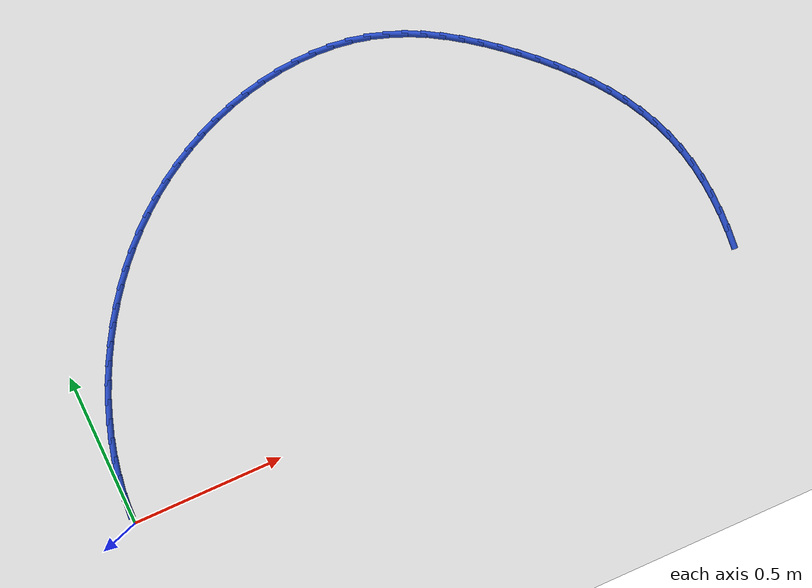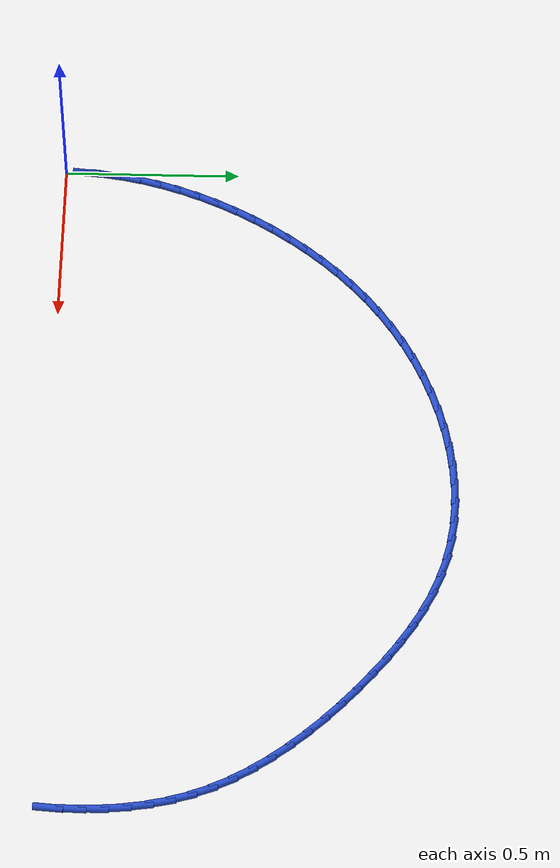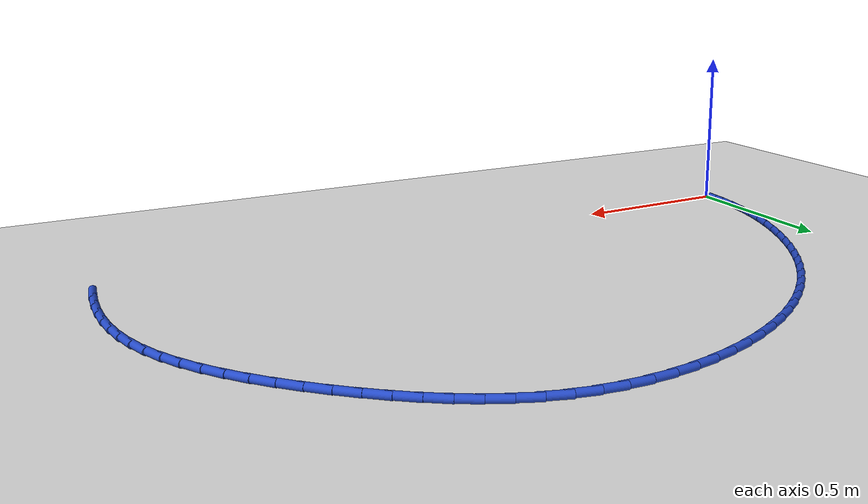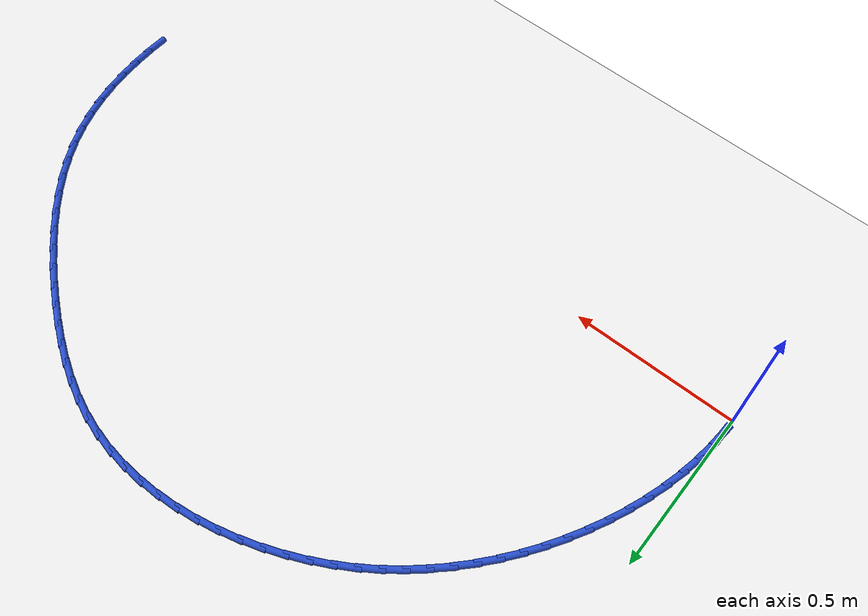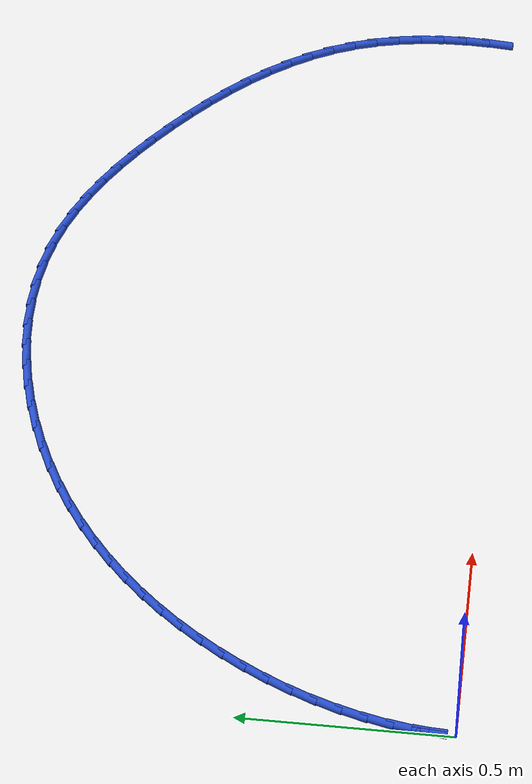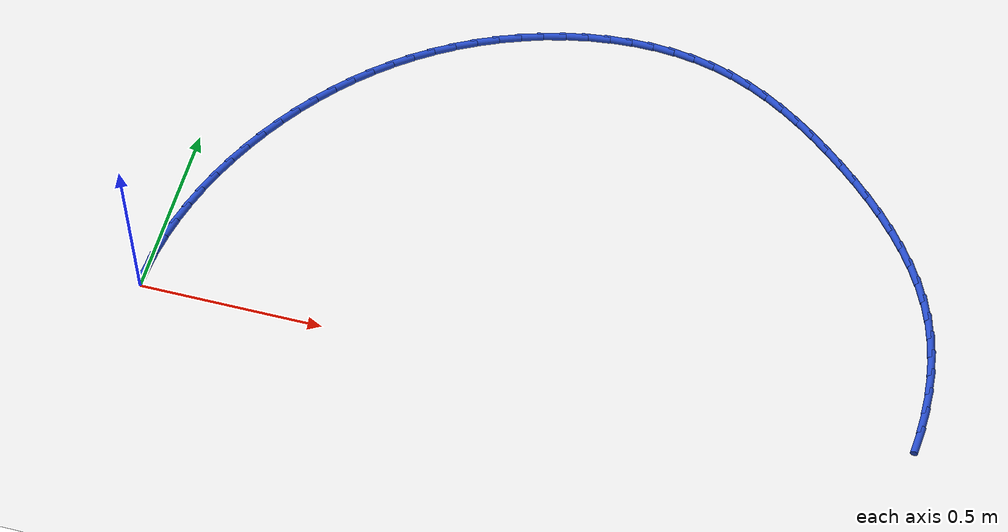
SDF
<sdf version="1.6">
 <world name="default">
  <model name="ground_plane">
   <static>1</static>
   <link name="link">
    <collision name="collision">
     <geometry><plane><normal>0 0 1</normal><size>100 100</size></plane></geometry>
     <surface><friction><ode><mu>100</mu><mu2>50</mu2></ode></friction></surface>
    </collision>
    <visual name="visual">
     <cast_shadows>0</cast_shadows>
     <geometry><plane><normal>0 0 1</normal><size>100 100</size></plane></geometry>
     <material>
      <script><uri>file://media/materials/scripts/gazebo.material</uri><name>Gazebo/WhiteGlow</name></script>
     </material>
    </visual>
   </link>
  </model>
  <model name="line">
   <link name="link_1">
    <pose>0.002670743782525973 0.05992076330531254 0.01 0 1.57 1.4629148495070567</pose>
    <collision name="collision">
     <geometry><cylinder><radius>0.01</radius><length>0.08</length></cylinder></geometry>
    </collision>
    <visual name="visual">
     <material>
      <script><name>Gazebo/Blue</name><uri>file://media/materials/scripts/gazebo.material</uri></script>
     </material>
     <geometry><cylinder><radius>0.01</radius><length>0.08</length></cylinder></geometry>
    </visual>
   </link>
   <link name="link_2">
    <pose>0.009133685577692723 0.1195959706348364 0.01 0 1.57 1.4023652362274563</pose>
    <collision name="collision">
     <geometry><cylinder><radius>0.01</radius><length>0.08</length></cylinder></geometry>
    </collision>
    <visual name="visual">
     <material>
      <script><name>Gazebo/Blue</name><uri>file://media/materials/scripts/gazebo.material</uri></script>
     </material>
     <geometry><cylinder><radius>0.01</radius><length>0.08</length></cylinder></geometry>
    </visual>
   </link>
   <link name="link_3">
    <pose>0.01921371365413952 0.17887556720026782 0.01 0 1.57 1.3445145228680742</pose>
    <collision name="collision">
     <geometry><cylinder><radius>0.01</radius><length>0.08</length></cylinder></geometry>
    </collision>
    <visual name="visual">
     <material>
      <script><name>Gazebo/Blue</name><uri>file://media/materials/scripts/gazebo.material</uri></script>
     </material>
     <geometry><cylinder><radius>0.01</radius><length>0.08</length></cylinder></geometry>
    </visual>
   </link>
   <link name="link_4">
    <pose>0.03273571628050566 0.23760949821330327 0.01 0 1.57 1.289209985234166</pose>
    <collision name="collision">
     <geometry><cylinder><radius>0.01</radius><length>0.08</length></cylinder></geometry>
    </collision>
    <visual name="visual">
     <material>
      <script><name>Gazebo/Blue</name><uri>file://media/materials/scripts/gazebo.material</uri></script>
     </material>
     <geometry><cylinder><radius>0.01</radius><length>0.08</length></cylinder></geometry>
    </visual>
   </link>
   <link name="link_5">
    <pose>0.04952458172543038 0.29564770888563896 0.01 0 1.57 1.2362529853922084</pose>
    <collision name="collision">
     <geometry><cylinder><radius>0.01</radius><length>0.08</length></cylinder></geometry>
    </collision>
    <visual name="visual">
     <material>
      <script><name>Gazebo/Blue</name><uri>file://media/materials/scripts/gazebo.material</uri></script>
     </material>
     <geometry><cylinder><radius>0.01</radius><length>0.08</length></cylinder></geometry>
    </visual>
   </link>
   <link name="link_6">
    <pose>0.06940519825755294 0.3528401444289708 0.01 0 1.57 1.1854119181057141</pose>
    <collision name="collision">
     <geometry><cylinder><radius>0.01</radius><length>0.08</length></cylinder></geometry>
    </collision>
    <visual name="visual">
     <material>
      <script><name>Gazebo/Blue</name><uri>file://media/materials/scripts/gazebo.material</uri></script>
     </material>
     <geometry><cylinder><radius>0.01</radius><length>0.08</length></cylinder></geometry>
    </visual>
   </link>
   <link name="link_7">
    <pose>0.09220245414551259 0.40903675005499546 0.01 0 1.57 1.1364322001155174</pose>
    <collision name="collision">
     <geometry><cylinder><radius>0.01</radius><length>0.08</length></cylinder></geometry>
    </collision>
    <visual name="visual">
     <material>
      <script><name>Gazebo/Blue</name><uri>file://media/materials/scripts/gazebo.material</uri></script>
     </material>
     <geometry><cylinder><radius>0.01</radius><length>0.08</length></cylinder></geometry>
    </visual>
   </link>
   <link name="link_8">
    <pose>0.11774123765794867 0.46408747097540926 0.01 0 1.57 1.08904339490373</pose>
    <collision name="collision">
     <geometry><cylinder><radius>0.01</radius><length>0.08</length></cylinder></geometry>
    </collision>
    <visual name="visual">
     <material>
      <script><name>Gazebo/Blue</name><uri>file://media/materials/scripts/gazebo.material</uri></script>
     </material>
     <geometry><cylinder><radius>0.01</radius><length>0.08</length></cylinder></geometry>
    </visual>
   </link>
   <link name="link_9">
    <pose>0.1458464370635003 0.517842252401908 0.01 0 1.57 1.0428984276731994</pose>
    <collision name="collision">
     <geometry><cylinder><radius>0.01</radius><length>0.08</length></cylinder></geometry>
    </collision>
    <visual name="visual">
     <material>
      <script><name>Gazebo/Blue</name><uri>file://media/materials/scripts/gazebo.material</uri></script>
     </material>
     <geometry><cylinder><radius>0.01</radius><length>0.08</length></cylinder></geometry>
    </visual>
   </link>
   <link name="link_10">
    <pose>0.1763479412515382 0.5701517620996592 0.01 0 1.57 0.9966374861989264</pose>
    <collision name="collision">
     <geometry><cylinder><radius>0.01</radius><length>0.08</length></cylinder></geometry>
    </collision>
    <visual name="visual">
     <material>
      <script><name>Gazebo/Blue</name><uri>file://media/materials/scripts/gazebo.material</uri></script>
     </material>
     <geometry><cylinder><radius>0.01</radius><length>0.08</length></cylinder></geometry>
    </visual>
   </link>
   <link name="link_11">
    <pose>0.20916093827418722 0.6208789929449392 0.01 0 1.57 0.949222952366097</pose>
    <collision name="collision">
     <geometry><cylinder><radius>0.01</radius><length>0.08</length></cylinder></geometry>
    </collision>
    <visual name="visual">
     <material>
      <script><name>Gazebo/Blue</name><uri>file://media/materials/scripts/gazebo.material</uri></script>
     </material>
     <geometry><cylinder><radius>0.01</radius><length>0.08</length></cylinder></geometry>
    </visual>
   </link>
   <link name="link_12">
    <pose>0.24427208668566366 0.6698972647838428 0.01 0 1.57 0.9005714180768248</pose>
    <collision name="collision">
     <geometry><cylinder><radius>0.01</radius><length>0.08</length></cylinder></geometry>
    </collision>
    <visual name="visual">
     <material>
      <script><name>Gazebo/Blue</name><uri>file://media/materials/scripts/gazebo.material</uri></script>
     </material>
     <geometry><cylinder><radius>0.01</radius><length>0.08</length></cylinder></geometry>
    </visual>
   </link>
   <link name="link_13">
    <pose>0.28167025277528546 0.7170802164641935 0.01 0 1.57 0.850647292722275</pose>
    <collision name="collision">
     <geometry><cylinder><radius>0.01</radius><length>0.08</length></cylinder></geometry>
    </collision>
    <visual name="visual">
     <material>
      <script><name>Gazebo/Blue</name><uri>file://media/materials/scripts/gazebo.material</uri></script>
     </material>
     <geometry><cylinder><radius>0.01</radius><length>0.08</length></cylinder></geometry>
    </visual>
   </link>
   <link name="link_14">
    <pose>0.3213443028323702 0.762301486833815 0.01 0 1.57 0.7994374327375275</pose>
    <collision name="collision">
     <geometry><cylinder><radius>0.01</radius><length>0.08</length></cylinder></geometry>
    </collision>
    <visual name="visual">
     <material>
      <script><name>Gazebo/Blue</name><uri>file://media/materials/scripts/gazebo.material</uri></script>
     </material>
     <geometry><cylinder><radius>0.01</radius><length>0.08</length></cylinder></geometry>
    </visual>
   </link>
   <link name="link_15">
    <pose>0.3632831031462361 0.805434714740532 0.01 0 1.57 0.7469545961818209</pose>
    <collision name="collision">
     <geometry><cylinder><radius>0.01</radius><length>0.08</length></cylinder></geometry>
    </collision>
    <visual name="visual">
     <material>
      <script><name>Gazebo/Blue</name><uri>file://media/materials/scripts/gazebo.material</uri></script>
     </material>
     <geometry><cylinder><radius>0.01</radius><length>0.08</length></cylinder></geometry>
    </visual>
   </link>
   <link name="link_16">
    <pose>0.40747552000620085 0.8463535390321676 0.01 0 1.57 0.6932406277167852</pose>
    <collision name="collision">
     <geometry><cylinder><radius>0.01</radius><length>0.08</length></cylinder></geometry>
    </collision>
    <visual name="visual">
     <material>
      <script><name>Gazebo/Blue</name><uri>file://media/materials/scripts/gazebo.material</uri></script>
     </material>
     <geometry><cylinder><radius>0.01</radius><length>0.08</length></cylinder></geometry>
    </visual>
   </link>
   <link name="link_17">
    <pose>0.45391041970158247 0.8849315985565465 0.01 0 1.57 0.6383690635815007</pose>
    <collision name="collision">
     <geometry><cylinder><radius>0.01</radius><length>0.08</length></cylinder></geometry>
    </collision>
    <visual name="visual">
     <material>
      <script><name>Gazebo/Blue</name><uri>file://media/materials/scripts/gazebo.material</uri></script>
     </material>
     <geometry><cylinder><radius>0.01</radius><length>0.08</length></cylinder></geometry>
    </visual>
   </link>
   <link name="link_18">
    <pose>0.5025766685216987 0.9210425321614919 0.01 0 1.57 0.5824468090240494</pose>
    <collision name="collision">
     <geometry><cylinder><radius>0.01</radius><length>0.08</length></cylinder></geometry>
    </collision>
    <visual name="visual">
     <material>
      <script><name>Gazebo/Blue</name><uri>file://media/materials/scripts/gazebo.material</uri></script>
     </material>
     <geometry><cylinder><radius>0.01</radius><length>0.08</length></cylinder></geometry>
    </visual>
   </link>
   <link name="link_19">
    <pose>0.5534631327558676 0.954559978694828 0.01 0 1.57 0.5256238176085087</pose>
    <collision name="collision">
     <geometry><cylinder><radius>0.01</radius><length>0.08</length></cylinder></geometry>
    </collision>
    <visual name="visual">
     <material>
      <script><name>Gazebo/Blue</name><uri>file://media/materials/scripts/gazebo.material</uri></script>
     </material>
     <geometry><cylinder><radius>0.01</radius><length>0.08</length></cylinder></geometry>
    </visual>
   </link>
   <link name="link_20">
    <pose>0.6065571969923734 0.9853573759211827 0.01 0 1.57 0.4686447781451276</pose>
    <collision name="collision">
     <geometry><cylinder><radius>0.01</radius><length>0.08</length></cylinder></geometry>
    </collision>
    <visual name="visual">
     <material>
      <script><name>Gazebo/Blue</name><uri>file://media/materials/scripts/gazebo.material</uri></script>
     </material>
     <geometry><cylinder><radius>0.01</radius><length>0.08</length></cylinder></geometry>
    </visual>
   </link>
   <link name="link_21">
    <pose>0.6617383859235791 1.013293523825977 0.01 0 1.57 0.41219783122946</pose>
    <collision name="collision">
     <geometry><cylinder><radius>0.01</radius><length>0.08</length></cylinder></geometry>
    </collision>
    <visual name="visual">
     <material>
      <script><name>Gazebo/Blue</name><uri>file://media/materials/scripts/gazebo.material</uri></script>
     </material>
     <geometry><cylinder><radius>0.01</radius><length>0.08</length></cylinder></geometry>
    </visual>
   </link>
   <link name="link_22">
    <pose>0.718707120424193 1.0382029160283452 0.01 0 1.57 0.3557655334758526</pose>
    <collision name="collision">
     <geometry><cylinder><radius>0.01</radius><length>0.08</length></cylinder></geometry>
    </collision>
    <visual name="visual">
     <material>
      <script><name>Gazebo/Blue</name><uri>file://media/materials/scripts/gazebo.material</uri></script>
     </material>
     <geometry><cylinder><radius>0.01</radius><length>0.08</length></cylinder></geometry>
    </visual>
   </link>
   <link name="link_23">
    <pose>0.7771469318164739 1.0599177540486053 0.01 0 1.57 0.2987402029087475</pose>
    <collision name="collision">
     <geometry><cylinder><radius>0.01</radius><length>0.08</length></cylinder></geometry>
    </collision>
    <visual name="visual">
     <material>
      <script><name>Gazebo/Blue</name><uri>file://media/materials/scripts/gazebo.material</uri></script>
     </material>
     <geometry><cylinder><radius>0.01</radius><length>0.08</length></cylinder></geometry>
    </visual>
   </link>
   <link name="link_24">
    <pose>0.8367413514226802 1.0782702394070764 0.01 0 1.57 0.24052259899905978</pose>
    <collision name="collision">
     <geometry><cylinder><radius>0.01</radius><length>0.08</length></cylinder></geometry>
    </collision>
    <visual name="visual">
     <material>
      <script><name>Gazebo/Blue</name><uri>file://media/materials/scripts/gazebo.material</uri></script>
     </material>
     <geometry><cylinder><radius>0.01</radius><length>0.08</length></cylinder></geometry>
    </visual>
   </link>
   <link name="link_25">
    <pose>0.8971739105650705 1.0930925736240769 0.01 0 1.57 0.18051719319565718</pose>
    <collision name="collision">
     <geometry><cylinder><radius>0.01</radius><length>0.08</length></cylinder></geometry>
    </collision>
    <visual name="visual">
     <material>
      <script><name>Gazebo/Blue</name><uri>file://media/materials/scripts/gazebo.material</uri></script>
     </material>
     <geometry><cylinder><radius>0.01</radius><length>0.08</length></cylinder></geometry>
    </visual>
   </link>
   <link name="link_26">
    <pose>0.9581281405659038 1.1042169582199257 0.01 0 1.57 0.11813125209369472</pose>
    <collision name="collision">
     <geometry><cylinder><radius>0.01</radius><length>0.08</length></cylinder></geometry>
    </collision>
    <visual name="visual">
     <material>
      <script><name>Gazebo/Blue</name><uri>file://media/materials/scripts/gazebo.material</uri></script>
     </material>
     <geometry><cylinder><radius>0.01</radius><length>0.08</length></cylinder></geometry>
    </visual>
   </link>
   <link name="link_27">
    <pose>1.0192875727474382 1.1114755947149413 0.01 0 1.57 0.052779549257593504</pose>
    <collision name="collision">
     <geometry><cylinder><radius>0.01</radius><length>0.08</length></cylinder></geometry>
    </collision>
    <visual name="visual">
     <material>
      <script><name>Gazebo/Blue</name><uri>file://media/materials/scripts/gazebo.material</uri></script>
     </material>
     <geometry><cylinder><radius>0.01</radius><length>0.08</length></cylinder></geometry>
    </visual>
   </link>
   <link name="link_28">
    <pose>1.0803357384319325 1.1147006846294418 0.01 0 1.57 -0.016102999482137476</pose>
    <collision name="collision">
     <geometry><cylinder><radius>0.01</radius><length>0.08</length></cylinder></geometry>
    </collision>
    <visual name="visual">
     <material>
      <script><name>Gazebo/Blue</name><uri>file://media/materials/scripts/gazebo.material</uri></script>
     </material>
     <geometry><cylinder><radius>0.01</radius><length>0.08</length></cylinder></geometry>
    </visual>
   </link>
   <link name="link_29">
    <pose>1.1409561689416456 1.1137244294837465 0.01 0 1.57 -0.08903810061088754</pose>
    <collision name="collision">
     <geometry><cylinder><radius>0.01</radius><length>0.08</length></cylinder></geometry>
    </collision>
    <visual name="visual">
     <material>
      <script><name>Gazebo/Blue</name><uri>file://media/materials/scripts/gazebo.material</uri></script>
     </material>
     <geometry><cylinder><radius>0.01</radius><length>0.08</length></cylinder></geometry>
    </visual>
   </link>
   <link name="link_30">
    <pose>1.2008323955988363 1.1083790307981736 0.01 0 1.57 -0.1664676463310634</pose>
    <collision name="collision">
     <geometry><cylinder><radius>0.01</radius><length>0.08</length></cylinder></geometry>
    </collision>
    <visual name="visual">
     <material>
      <script><name>Gazebo/Blue</name><uri>file://media/materials/scripts/gazebo.material</uri></script>
     </material>
     <geometry><cylinder><radius>0.01</radius><length>0.08</length></cylinder></geometry>
    </visual>
   </link>
   <link name="link_31">
    <pose>1.2596479497257627 1.098496690093042 0.01 0 1.57 -0.2487025266286435</pose>
    <collision name="collision">
     <geometry><cylinder><radius>0.01</radius><length>0.08</length></cylinder></geometry>
    </collision>
    <visual name="visual">
     <material>
      <script><name>Gazebo/Blue</name><uri>file://media/materials/scripts/gazebo.material</uri></script>
     </material>
     <geometry><cylinder><radius>0.01</radius><length>0.08</length></cylinder></geometry>
    </visual>
   </link>
   <link name="link_32">
    <pose>1.3170863649149658 1.0839096123547478 0.01 0 1.57 -0.333617327439597</pose>
    <collision name="collision">
     <geometry><cylinder><radius>0.01</radius><length>0.08</length></cylinder></geometry>
    </collision>
    <visual name="visual">
     <material>
      <script><name>Gazebo/Blue</name><uri>file://media/materials/scripts/gazebo.material</uri></script>
     </material>
     <geometry><cylinder><radius>0.01</radius><length>0.08</length></cylinder></geometry>
    </visual>
   </link>
   <link name="link_33">
    <pose>1.3729059312867857 1.0645641346204473 0.01 0 1.57 -0.41267585732083867</pose>
    <collision name="collision">
     <geometry><cylinder><radius>0.01</radius><length>0.08</length></cylinder></geometry>
    </collision>
    <visual name="visual">
     <material>
      <script><name>Gazebo/Blue</name><uri>file://media/materials/scripts/gazebo.material</uri></script>
     </material>
     <geometry><cylinder><radius>0.01</radius><length>0.08</length></cylinder></geometry>
    </visual>
   </link>
   <link name="link_34">
    <pose>1.4271364589705104 1.0408211281005038 0.01 0 1.57 -0.4834588051066875</pose>
    <collision name="collision">
     <geometry><cylinder><radius>0.01</radius><length>0.08</length></cylinder></geometry>
    </collision>
    <visual name="visual">
     <material>
      <script><name>Gazebo/Blue</name><uri>file://media/materials/scripts/gazebo.material</uri></script>
     </material>
     <geometry><cylinder><radius>0.01</radius><length>0.08</length></cylinder></geometry>
    </visual>
   </link>
   <link name="link_35">
    <pose>1.479869383585208 1.0131355486790188 0.01 0 1.57 -0.545804833112086</pose>
    <collision name="collision">
     <geometry><cylinder><radius>0.01</radius><length>0.08</length></cylinder></geometry>
    </collision>
    <visual name="visual">
     <material>
      <script><name>Gazebo/Blue</name><uri>file://media/materials/scripts/gazebo.material</uri></script>
     </material>
     <geometry><cylinder><radius>0.01</radius><length>0.08</length></cylinder></geometry>
    </visual>
   </link>
   <link name="link_36">
    <pose>1.5311961407499466 0.9819623522400923 0.01 0 1.57 -0.5998745487296069</pose>
    <collision name="collision">
     <geometry><cylinder><radius>0.01</radius><length>0.08</length></cylinder></geometry>
    </collision>
    <visual name="visual">
     <material>
      <script><name>Gazebo/Blue</name><uri>file://media/materials/scripts/gazebo.material</uri></script>
     </material>
     <geometry><cylinder><radius>0.01</radius><length>0.08</length></cylinder></geometry>
    </visual>
   </link>
   <link name="link_37">
    <pose>1.5812081660837958 0.9477564946678264 0.01 0 1.57 -0.6460151782221087</pose>
    <collision name="collision">
     <geometry><cylinder><radius>0.01</radius><length>0.08</length></cylinder></geometry>
    </collision>
    <visual name="visual">
     <material>
      <script><name>Gazebo/Blue</name><uri>file://media/materials/scripts/gazebo.material</uri></script>
     </material>
     <geometry><cylinder><radius>0.01</radius><length>0.08</length></cylinder></geometry>
    </visual>
   </link>
   <link name="link_38">
    <pose>1.6299968952058226 0.9109729318463211 0.01 0 1.57 -0.6846517417461965</pose>
    <collision name="collision">
     <geometry><cylinder><radius>0.01</radius><length>0.08</length></cylinder></geometry>
    </collision>
    <visual name="visual">
     <material>
      <script><name>Gazebo/Blue</name><uri>file://media/materials/scripts/gazebo.material</uri></script>
     </material>
     <geometry><cylinder><radius>0.01</radius><length>0.08</length></cylinder></geometry>
    </visual>
   </link>
   <link name="link_39">
    <pose>1.6776537637350968 0.8720666196596781 0.01 0 1.57 -0.7177047697587423</pose>
    <collision name="collision">
     <geometry><cylinder><radius>0.01</radius><length>0.08</length></cylinder></geometry>
    </collision>
    <visual name="visual">
     <material>
      <script><name>Gazebo/Blue</name><uri>file://media/materials/scripts/gazebo.material</uri></script>
     </material>
     <geometry><cylinder><radius>0.01</radius><length>0.08</length></cylinder></geometry>
    </visual>
   </link>
   <link name="link_40">
    <pose>1.7241991098372957 0.8314318241223905 0.01 0 1.57 -0.752389569694223</pose>
    <collision name="collision">
     <geometry><cylinder><radius>0.01</radius><length>0.08</length></cylinder></geometry>
    </collision>
    <visual name="visual">
     <material>
      <script><name>Gazebo/Blue</name><uri>file://media/materials/scripts/gazebo.material</uri></script>
     </material>
     <geometry><cylinder><radius>0.01</radius><length>0.08</length></cylinder></geometry>
    </visual>
   </link>
   <link name="link_41">
    <pose>1.769329607477339 0.7891865265551417 0.01 0 1.57 -0.791091773001737</pose>
    <collision name="collision">
     <geometry><cylinder><radius>0.01</radius><length>0.08</length></cylinder></geometry>
    </collision>
    <visual name="visual">
     <material>
      <script><name>Gazebo/Blue</name><uri>file://media/materials/scripts/gazebo.material</uri></script>
     </material>
     <geometry><cylinder><radius>0.01</radius><length>0.08</length></cylinder></geometry>
    </visual>
   </link>
   <link name="link_42">
    <pose>1.812649876787708 0.745370129724515 0.01 0 1.57 -0.8343217278161564</pose>
    <collision name="collision">
     <geometry><cylinder><radius>0.01</radius><length>0.08</length></cylinder></geometry>
    </collision>
    <visual name="visual">
     <material>
      <script><name>Gazebo/Blue</name><uri>file://media/materials/scripts/gazebo.material</uri></script>
     </material>
     <geometry><cylinder><radius>0.01</radius><length>0.08</length></cylinder></geometry>
    </visual>
   </link>
   <link name="link_43">
    <pose>1.8537645314165816 0.700022030861996 0.01 0 1.57 -0.8826458487008829</pose>
    <collision name="collision">
     <geometry><cylinder><radius>0.01</radius><length>0.08</length></cylinder></geometry>
    </collision>
    <visual name="visual">
     <material>
      <script><name>Gazebo/Blue</name><uri>file://media/materials/scripts/gazebo.material</uri></script>
     </material>
     <geometry><cylinder><radius>0.01</radius><length>0.08</length></cylinder></geometry>
    </visual>
   </link>
   <link name="link_44">
    <pose>1.89227818501214 0.6531816271990702 0.01 0 1.57 -0.9366731012097109</pose>
    <collision name="collision">
     <geometry><cylinder><radius>0.01</radius><length>0.08</length></cylinder></geometry>
    </collision>
    <visual name="visual">
     <material>
      <script><name>Gazebo/Blue</name><uri>file://media/materials/scripts/gazebo.material</uri></script>
     </material>
     <geometry><cylinder><radius>0.01</radius><length>0.08</length></cylinder></geometry>
    </visual>
   </link>
   <link name="link_45">
    <pose>1.9277954512225624 0.6048883159672231 0.01 0 1.57 -0.9970269331088978</pose>
    <collision name="collision">
     <geometry><cylinder><radius>0.01</radius><length>0.08</length></cylinder></geometry>
    </collision>
    <visual name="visual">
     <material>
      <script><name>Gazebo/Blue</name><uri>file://media/materials/scripts/gazebo.material</uri></script>
     </material>
     <geometry><cylinder><radius>0.01</radius><length>0.08</length></cylinder></geometry>
    </visual>
   </link>
   <link name="link_46">
    <pose>1.959920943696029 0.55518149439794 0.01 0 1.57 -1.0642958767187027</pose>
    <collision name="collision">
     <geometry><cylinder><radius>0.01</radius><length>0.08</length></cylinder></geometry>
    </collision>
    <visual name="visual">
     <material>
      <script><name>Gazebo/Blue</name><uri>file://media/materials/scripts/gazebo.material</uri></script>
     </material>
     <geometry><cylinder><radius>0.01</radius><length>0.08</length></cylinder></geometry>
    </visual>
   </link>
   <link name="link_47">
    <pose>1.9882592760807194 0.5041005597227065 0.01 0 1.57 -1.1389552844347068</pose>
    <collision name="collision">
     <geometry><cylinder><radius>0.01</radius><length>0.08</length></cylinder></geometry>
    </collision>
    <visual name="visual">
     <material>
      <script><name>Gazebo/Blue</name><uri>file://media/materials/scripts/gazebo.material</uri></script>
     </material>
     <geometry><cylinder><radius>0.01</radius><length>0.08</length></cylinder></geometry>
    </visual>
   </link>
   <link name="link_48">
    <pose>2.0124150900618796 0.4516849105266907 0.01 0 1.57 -1.2190714192493575</pose>
    <collision name="collision">
     <geometry><cylinder><radius>0.01</radius><length>0.08</length></cylinder></geometry>
    </collision>
    <visual name="visual">
     <material>
      <script><name>Gazebo/Blue</name><uri>file://media/materials/scripts/gazebo.material</uri></script>
     </material>
     <geometry><cylinder><radius>0.01</radius><length>0.08</length></cylinder></geometry>
    </visual>
   </link>
   <link name="link_49">
    <pose>2.032123862050148 0.39798026234262585 0.01 0 1.57 -1.2969374727429337</pose>
    <collision name="collision">
     <geometry><cylinder><radius>0.01</radius><length>0.08</length></cylinder></geometry>
    </collision>
    <visual name="visual">
     <material>
      <script><name>Gazebo/Blue</name><uri>file://media/materials/scripts/gazebo.material</uri></script>
     </material>
     <geometry><cylinder><radius>0.01</radius><length>0.08</length></cylinder></geometry>
    </visual>
   </link>
   <link name="link_50">
    <pose>2.04755380207904 0.34305322389958504 0.01 0 1.57 -1.3700944133550388</pose>
    <collision name="collision">
     <geometry><cylinder><radius>0.01</radius><length>0.08</length></cylinder></geometry>
    </collision>
    <visual name="visual">
     <material>
      <script><name>Gazebo/Blue</name><uri>file://media/materials/scripts/gazebo.material</uri></script>
     </material>
     <geometry><cylinder><radius>0.01</radius><length>0.08</length></cylinder></geometry>
    </visual>
   </link>
   <link name="link_51">
    <pose>2.0589624636271795 0.28697471759685667 0.01 0 1.57 -1.4378369171335015</pose>
    <collision name="collision">
     <geometry><cylinder><radius>0.01</radius><length>0.08</length></cylinder></geometry>
    </collision>
    <visual name="visual">
     <material>
      <script><name>Gazebo/Blue</name><uri>file://media/materials/scripts/gazebo.material</uri></script>
     </material>
     <geometry><cylinder><radius>0.01</radius><length>0.08</length></cylinder></geometry>
    </visual>
   </link>
   <link name="link_52">
    <pose>2.0666074001731918 0.22981566583372906 0.01 0 1.57 -1.4997649334142038</pose>
    <collision name="collision">
     <geometry><cylinder><radius>0.01</radius><length>0.08</length></cylinder></geometry>
    </collision>
    <visual name="visual">
     <material>
      <script><name>Gazebo/Blue</name><uri>file://media/materials/scripts/gazebo.material</uri></script>
     </material>
     <geometry><cylinder><radius>0.01</radius><length>0.08</length></cylinder></geometry>
    </visual>
   </link>
   <link name="link_53">
    <pose>2.0707461651957026 0.17164699100949085 0.01 0 1.57 -1.555737635983188</pose>
    <collision name="collision">
     <geometry><cylinder><radius>0.01</radius><length>0.08</length></cylinder></geometry>
    </collision>
    <visual name="visual">
     <material>
      <script><name>Gazebo/Blue</name><uri>file://media/materials/scripts/gazebo.material</uri></script>
     </material>
     <geometry><cylinder><radius>0.01</radius><length>0.08</length></cylinder></geometry>
    </visual>
   </link>
   <link name="link_54">
    <pose>2.071636312173336 0.11253961552343036 0.01 0 1.57 1.5357808453264317</pose>
    <collision name="collision">
     <geometry><cylinder><radius>0.01</radius><length>0.08</length></cylinder></geometry>
    </collision>
    <visual name="visual">
     <material>
      <script><name>Gazebo/Blue</name><uri>file://media/materials/scripts/gazebo.material</uri></script>
     </material>
     <geometry><cylinder><radius>0.01</radius><length>0.08</length></cylinder></geometry>
    </visual>
   </link>
   <link name="link_55">
    <pose>2.0695353945847184 0.05256446177483615 0.01 0 1.57 1.4914132449953192</pose>
    <collision name="collision">
     <geometry><cylinder><radius>0.01</radius><length>0.08</length></cylinder></geometry>
    </collision>
    <visual name="visual">
     <material>
      <script><name>Gazebo/Blue</name><uri>file://media/materials/scripts/gazebo.material</uri></script>
     </material>
     <geometry><cylinder><radius>0.01</radius><length>0.08</length></cylinder></geometry>
    </visual>
   </link>
   <link name="link_111">
    <pose>0.0027130125232120612 0.05991063838006695 0.01 0 1.57 1.5255429231009046</pose>
    <collision name="collision">
     <geometry><cylinder><radius>0.01</radius><length>0.08</length></cylinder></geometry>
    </collision>
    <visual name="visual">
     <material>
      <script><name>Gazebo/Blue</name><uri>file://media/materials/scripts/gazebo.material</uri></script>
     </material>
     <geometry><cylinder><radius>0.01</radius><length>0.08</length></cylinder></geometry>
    </visual>
   </link>
  </model>
 </world>
</sdf>
